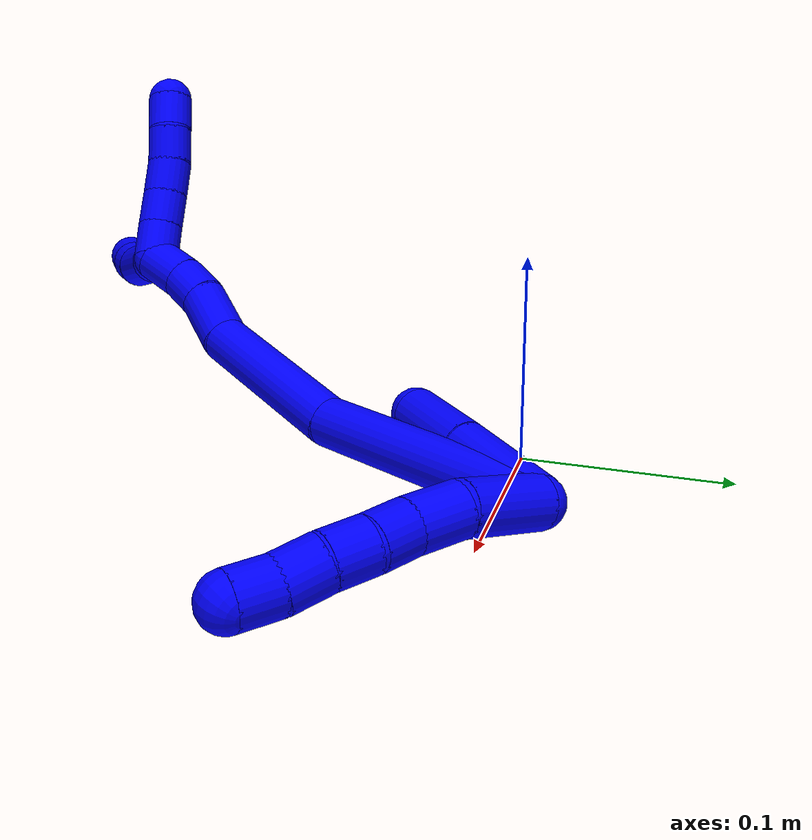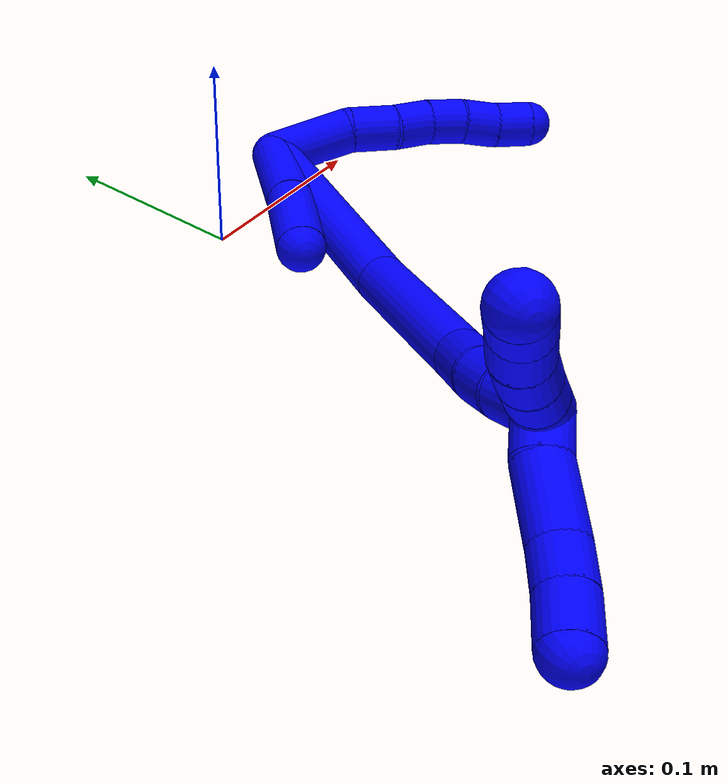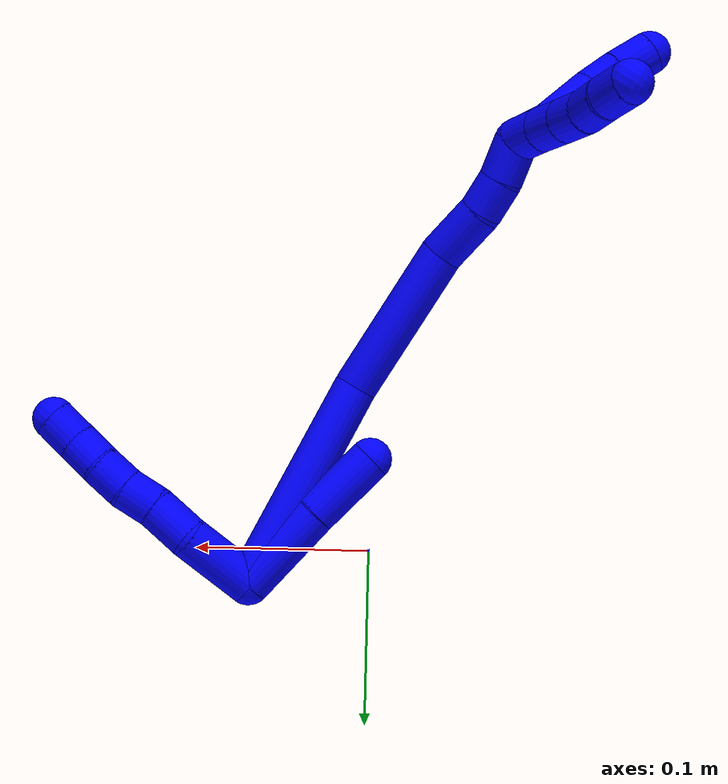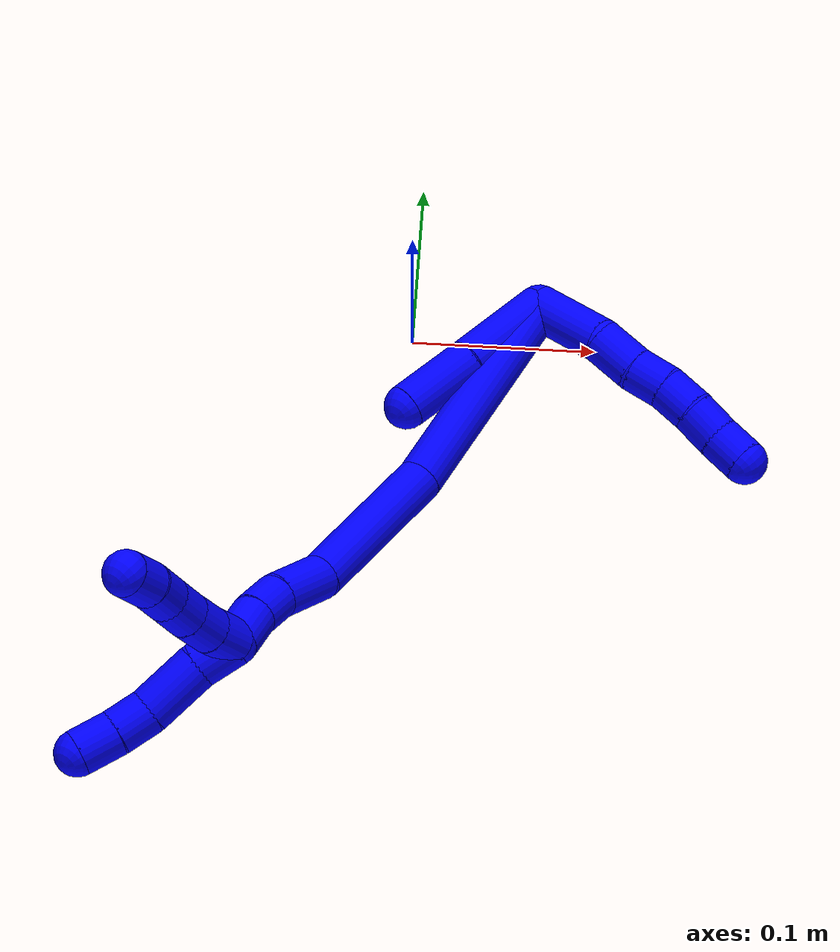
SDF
<sdf version="1.7">
 <world name="default">
  <model name="photoneo_s_sensor">
   <static>1</static>
   <pose>0 0 2 1.57079 1.57079 3.14159</pose>
   <link name="link">
    <inertial><mass>0.1</mass></inertial>
    <sensor name="sensor" type="depth">
     <update_rate>30</update_rate>
     <camera>
      <horizontal_fov>1.22</horizontal_fov>
      <image><width>1920</width><height>1200</height><format>B8G8R8</format></image>
      <clip><near>0.1</near><far>4</far></clip>
      <depth_camera><output>points</output></depth_camera>
     </camera>
     <plugin name="camera_plugin" filename="libgazebo_ros_depth_camera.so">
      <baseline>0.2</baseline>
      <alwaysOn>1</alwaysOn>
      <updateRate>0.0</updateRate>
      <cameraName>camera_ir</cameraName>
      <imageTopicName>/camera/color/image_raw</imageTopicName>
      <cameraInfoTopicName>/camera/color/camera_info</cameraInfoTopicName>
      <depthImageTopicName>/camera/depth/image_raw</depthImageTopicName>
      <depthImageCameraInfoTopicName>/camera/depth/camera_info</depthImageCameraInfoTopicName>
      <pointCloudTopicName>/camera/depth/points</pointCloudTopicName>
      <frameName>fr_optical</frameName>
      <pointCloudCutoff>0.1</pointCloudCutoff>
      <pointCloudCutoffMax>2.0</pointCloudCutoffMax>
      <distortionK1>0</distortionK1>
      <distortionK2>0</distortionK2>
      <distortionK3>0</distortionK3>
      <distortionT1>0</distortionT1>
      <distortionT2>0</distortionT2>
      <CxPrime>0</CxPrime>
      <Cx>0</Cx>
      <Cy>0</Cy>
      <focalLength>0</focalLength>
      <hackBaseline>0</hackBaseline>
     </plugin>
    </sensor>
   </link>
  </model>
  <model name="bin">
   <static>1</static>
   <link name="bottom">
    <collision name="collision-bottom">
     <pose>0 0 -0.01 0 -0 0</pose>
     <geometry><box><size>0.8 0.6 0.02</size></box></geometry>
     <surface>
      <friction><ode><mu>100</mu><mu2>100</mu2></ode></friction>
      <contact><collide_bitmask>65535</collide_bitmask></contact>
     </surface>
    </collision>
   </link>
   <link name="west_wall">
    <collision name="collision-west_wall">
     <pose>-0.41 0 0.1 0 -0 0</pose>
     <geometry><box><size>0.02 0.6 0.2</size></box></geometry>
     <surface>
      <friction><ode><mu>100</mu><mu2>100</mu2></ode></friction>
      <contact><collide_bitmask>65535</collide_bitmask></contact>
     </surface>
    </collision>
   </link>
   <link name="east_wall">
    <collision name="collision-east_wall">
     <pose>0.41 0 0.1 0 -0 0</pose>
     <geometry><box><size>0.02 0.6 0.2</size></box></geometry>
     <surface>
      <friction><ode><mu>100</mu><mu2>100</mu2></ode></friction>
      <contact><collide_bitmask>65535</collide_bitmask></contact>
     </surface>
    </collision>
   </link>
   <link name="south_wall">
    <collision name="collision-south_wall">
     <pose>0 -0.31 0.1 0 -0 0</pose>
     <geometry><box><size>0.8 0.02 0.2</size></box></geometry>
     <surface>
      <friction><ode><mu>100</mu><mu2>100</mu2></ode></friction>
      <contact><collide_bitmask>65535</collide_bitmask></contact>
     </surface>
    </collision>
   </link>
   <link name="north_wall">
    <collision name="collision-north_wall">
     <pose>0 0.31 0.1 0 -0 0</pose>
     <geometry><box><size>0.8 0.02 0.2</size></box></geometry>
     <surface>
      <friction><ode><mu>100</mu><mu2>100</mu2></ode></friction>
      <contact><collide_bitmask>65535</collide_bitmask></contact>
     </surface>
    </collision>
   </link>
  </model>
  <model name="1">
   <static>0</static>
   <link name="1">
    <collision name="collision-cylinder-e_1_2_8">
     <pose>0.020277 -0.008296 0.001987 1.33573 1.17259 0.965195</pose>
     <geometry><cylinder><radius>0.0125</radius><length>0.043996</length></cylinder></geometry>
     <surface>
      <friction><ode><mu>1.16</mu><mu2>1.16</mu2><slip1>0</slip1><slip2>0</slip2></ode></friction>
      <contact><ode><kp>1e+06</kp><kd>1</kd><max_vel>0</max_vel><min_depth>0.001</min_depth></ode></contact>
     </surface>
    </collision>
    <visual name="visual-cylinder-e_1_2_8">
     <pose>0.020277 -0.008296 0.001987 1.33573 1.17259 0.965195</pose>
     <geometry><cylinder><radius>0.0125</radius><length>0.043996</length></cylinder></geometry>
     <material><ambient>0 0 1 1</ambient></material>
    </visual>
    <collision name="collision-cylinder-e_2_8_9">
     <pose>0.050635 -0.024394 0.005424 1.38695 0.903838 0.767009</pose>
     <geometry><cylinder><radius>0.0125</radius><length>0.02566</length></cylinder></geometry>
     <surface>
      <friction><ode><mu>1.16</mu><mu2>1.16</mu2><slip1>0</slip1><slip2>0</slip2></ode></friction>
      <contact><ode><kp>1e+06</kp><kd>1</kd><max_vel>0</max_vel><min_depth>0.001</min_depth></ode></contact>
     </surface>
    </collision>
    <visual name="visual-cylinder-e_2_8_9">
     <pose>0.050635 -0.024394 0.005424 1.38695 0.903838 0.767009</pose>
     <geometry><cylinder><radius>0.0125</radius><length>0.02566</length></cylinder></geometry>
     <material><ambient>0 0 1 1</ambient></material>
    </visual>
    <collision name="collision-cylinder-e_3_9_10">
     <pose>0.068963 -0.037967 0.006415 1.65035 0.958826 1.02547</pose>
     <geometry><cylinder><radius>0.0125</radius><length>0.020154</length></cylinder></geometry>
     <surface>
      <friction><ode><mu>1.16</mu><mu2>1.16</mu2><slip1>0</slip1><slip2>0</slip2></ode></friction>
      <contact><ode><kp>1e+06</kp><kd>1</kd><max_vel>0</max_vel><min_depth>0.001</min_depth></ode></contact>
     </surface>
    </collision>
    <visual name="visual-cylinder-e_3_9_10">
     <pose>0.068963 -0.037967 0.006415 1.65035 0.958826 1.02547</pose>
     <geometry><cylinder><radius>0.0125</radius><length>0.020154</length></cylinder></geometry>
     <material><ambient>0 0 1 1</ambient></material>
    </visual>
    <collision name="collision-cylinder-e_4_10_11">
     <pose>0.084883 -0.050112 0.007076 1.39672 0.870003 0.743887</pose>
     <geometry><cylinder><radius>0.0125</radius><length>0.020075</length></cylinder></geometry>
     <surface>
      <friction><ode><mu>1.16</mu><mu2>1.16</mu2><slip1>0</slip1><slip2>0</slip2></ode></friction>
      <contact><ode><kp>1e+06</kp><kd>1</kd><max_vel>0</max_vel><min_depth>0.001</min_depth></ode></contact>
     </surface>
    </collision>
    <visual name="visual-cylinder-e_4_10_11">
     <pose>0.084883 -0.050112 0.007076 1.39672 0.870003 0.743887</pose>
     <geometry><cylinder><radius>0.0125</radius><length>0.020075</length></cylinder></geometry>
     <material><ambient>0 0 1 1</ambient></material>
    </visual>
    <collision name="collision-cylinder-e_5_11_12">
     <pose>0.099267 -0.063833 0.009389 1.40992 0.733861 0.632069</pose>
     <geometry><cylinder><radius>0.0125</radius><length>0.020045</length></cylinder></geometry>
     <surface>
      <friction><ode><mu>1.16</mu><mu2>1.16</mu2><slip1>0</slip1><slip2>0</slip2></ode></friction>
      <contact><ode><kp>1e+06</kp><kd>1</kd><max_vel>0</max_vel><min_depth>0.001</min_depth></ode></contact>
     </surface>
    </collision>
    <visual name="visual-cylinder-e_5_11_12">
     <pose>0.099267 -0.063833 0.009389 1.40992 0.733861 0.632069</pose>
     <geometry><cylinder><radius>0.0125</radius><length>0.020045</length></cylinder></geometry>
     <material><ambient>0 0 1 1</ambient></material>
    </visual>
    <collision name="collision-cylinder-e_6_12_6">
     <pose>0.113801 -0.077255 0.012202 1.31012 0.893636 0.705382</pose>
     <geometry><cylinder><radius>0.0125</radius><length>0.020071</length></cylinder></geometry>
     <surface>
      <friction><ode><mu>1.16</mu><mu2>1.16</mu2><slip1>0</slip1><slip2>0</slip2></ode></friction>
      <contact><ode><kp>1e+06</kp><kd>1</kd><max_vel>0</max_vel><min_depth>0.001</min_depth></ode></contact>
     </surface>
    </collision>
    <visual name="visual-cylinder-e_6_12_6">
     <pose>0.113801 -0.077255 0.012202 1.31012 0.893636 0.705382</pose>
     <geometry><cylinder><radius>0.0125</radius><length>0.020071</length></cylinder></geometry>
     <material><ambient>0 0 1 1</ambient></material>
    </visual>
    <collision name="collision-cylinder-e_1_2_13">
     <pose>-0.004992 0.000187 0.027195 -0.006864 -0.181547 0.000625</pose>
     <geometry><cylinder><radius>0.0125</radius><length>0.0553</length></cylinder></geometry>
     <surface>
      <friction><ode><mu>1.16</mu><mu2>1.16</mu2><slip1>0</slip1><slip2>0</slip2></ode></friction>
      <contact><ode><kp>1e+06</kp><kd>1</kd><max_vel>0</max_vel><min_depth>0.001</min_depth></ode></contact>
     </surface>
    </collision>
    <visual name="visual-cylinder-e_1_2_13">
     <pose>-0.004992 0.000187 0.027195 -0.006864 -0.181547 0.000625</pose>
     <geometry><cylinder><radius>0.0125</radius><length>0.0553</length></cylinder></geometry>
     <material><ambient>0 0 1 1</ambient></material>
    </visual>
    <collision name="collision-cylinder-e_2_13_5">
     <pose>-0.015458 -5.1e-05 0.076055 0.019561 -0.247419 -0.002432</pose>
     <geometry><cylinder><radius>0.0125</radius><length>0.0447</length></cylinder></geometry>
     <surface>
      <friction><ode><mu>1.16</mu><mu2>1.16</mu2><slip1>0</slip1><slip2>0</slip2></ode></friction>
      <contact><ode><kp>1e+06</kp><kd>1</kd><max_vel>0</max_vel><min_depth>0.001</min_depth></ode></contact>
     </surface>
    </collision>
    <visual name="visual-cylinder-e_2_13_5">
     <pose>-0.015458 -5.1e-05 0.076055 0.019561 -0.247419 -0.002432</pose>
     <geometry><cylinder><radius>0.0125</radius><length>0.0447</length></cylinder></geometry>
     <material><ambient>0 0 1 1</ambient></material>
    </visual>
    <collision name="collision-cylinder-e_1_2_14">
     <pose>-0.000609 -0.013612 0.063139 0.21234 -0.009426 -0.001004</pose>
     <geometry><cylinder><radius>0.0125</radius><length>0.129186</length></cylinder></geometry>
     <surface>
      <friction><ode><mu>1.16</mu><mu2>1.16</mu2><slip1>0</slip1><slip2>0</slip2></ode></friction>
      <contact><ode><kp>1e+06</kp><kd>1</kd><max_vel>0</max_vel><min_depth>0.001</min_depth></ode></contact>
     </surface>
    </collision>
    <visual name="visual-cylinder-e_1_2_14">
     <pose>-0.000609 -0.013612 0.063139 0.21234 -0.009426 -0.001004</pose>
     <geometry><cylinder><radius>0.0125</radius><length>0.129186</length></cylinder></geometry>
     <material><ambient>0 0 1 1</ambient></material>
    </visual>
    <collision name="collision-cylinder-e_2_14_15">
     <pose>0.000581 -0.026188 0.172151 -0.022598 0.039177 -0.000443</pose>
     <geometry><cylinder><radius>0.0125</radius><length>0.091838</length></cylinder></geometry>
     <surface>
      <friction><ode><mu>1.16</mu><mu2>1.16</mu2><slip1>0</slip1><slip2>0</slip2></ode></friction>
      <contact><ode><kp>1e+06</kp><kd>1</kd><max_vel>0</max_vel><min_depth>0.001</min_depth></ode></contact>
     </surface>
    </collision>
    <visual name="visual-cylinder-e_2_14_15">
     <pose>0.000581 -0.026188 0.172151 -0.022598 0.039177 -0.000443</pose>
     <geometry><cylinder><radius>0.0125</radius><length>0.091838</length></cylinder></geometry>
     <material><ambient>0 0 1 1</ambient></material>
    </visual>
    <collision name="collision-cylinder-e_3_15_16">
     <pose>0.002566 -0.019824 0.23405 -0.32088 0.011023 -0.001784</pose>
     <geometry><cylinder><radius>0.0125</radius><length>0.033781</length></cylinder></geometry>
     <surface>
      <friction><ode><mu>1.16</mu><mu2>1.16</mu2><slip1>0</slip1><slip2>0</slip2></ode></friction>
      <contact><ode><kp>1e+06</kp><kd>1</kd><max_vel>0</max_vel><min_depth>0.001</min_depth></ode></contact>
     </surface>
    </collision>
    <visual name="visual-cylinder-e_3_15_16">
     <pose>0.002566 -0.019824 0.23405 -0.32088 0.011023 -0.001784</pose>
     <geometry><cylinder><radius>0.0125</radius><length>0.033781</length></cylinder></geometry>
     <material><ambient>0 0 1 1</ambient></material>
    </visual>
    <collision name="collision-cylinder-e_4_16_17">
     <pose>0.004055 -0.012992 0.260588 -0.142266 0.12216 -0.008715</pose>
     <geometry><cylinder><radius>0.0125</radius><length>0.021395</length></cylinder></geometry>
     <surface>
      <friction><ode><mu>1.16</mu><mu2>1.16</mu2><slip1>0</slip1><slip2>0</slip2></ode></friction>
      <contact><ode><kp>1e+06</kp><kd>1</kd><max_vel>0</max_vel><min_depth>0.001</min_depth></ode></contact>
     </surface>
    </collision>
    <visual name="visual-cylinder-e_4_16_17">
     <pose>0.004055 -0.012992 0.260588 -0.142266 0.12216 -0.008715</pose>
     <geometry><cylinder><radius>0.0125</radius><length>0.021395</length></cylinder></geometry>
     <material><ambient>0 0 1 1</ambient></material>
    </visual>
    <collision name="collision-cylinder-e_5_17_1">
     <pose>0.008425 -0.011272 0.282595 -0.018584 0.2606 -0.002435</pose>
     <geometry><cylinder><radius>0.0125</radius><length>0.0238</length></cylinder></geometry>
     <surface>
      <friction><ode><mu>1.16</mu><mu2>1.16</mu2><slip1>0</slip1><slip2>0</slip2></ode></friction>
      <contact><ode><kp>1e+06</kp><kd>1</kd><max_vel>0</max_vel><min_depth>0.001</min_depth></ode></contact>
     </surface>
    </collision>
    <visual name="visual-cylinder-e_5_17_1">
     <pose>0.008425 -0.011272 0.282595 -0.018584 0.2606 -0.002435</pose>
     <geometry><cylinder><radius>0.0125</radius><length>0.0238</length></cylinder></geometry>
     <material><ambient>0 0 1 1</ambient></material>
    </visual>
    <collision name="collision-cylinder-e_1_1_18">
     <pose>0.004728 -0.012856 0.303017 0.19874 -0.638889 -0.065931</pose>
     <geometry><cylinder><radius>0.0125</radius><length>0.022683</length></cylinder></geometry>
     <surface>
      <friction><ode><mu>1.16</mu><mu2>1.16</mu2><slip1>0</slip1><slip2>0</slip2></ode></friction>
      <contact><ode><kp>1e+06</kp><kd>1</kd><max_vel>0</max_vel><min_depth>0.001</min_depth></ode></contact>
     </surface>
    </collision>
    <visual name="visual-cylinder-e_1_1_18">
     <pose>0.004728 -0.012856 0.303017 0.19874 -0.638889 -0.065931</pose>
     <geometry><cylinder><radius>0.0125</radius><length>0.022683</length></cylinder></geometry>
     <material><ambient>0 0 1 1</ambient></material>
    </visual>
    <collision name="collision-cylinder-e_2_18_19">
     <pose>-0.009757 -0.019323 0.326707 0.306258 -0.462558 -0.072659</pose>
     <geometry><cylinder><radius>0.0125</radius><length>0.034609</length></cylinder></geometry>
     <surface>
      <friction><ode><mu>1.16</mu><mu2>1.16</mu2><slip1>0</slip1><slip2>0</slip2></ode></friction>
      <contact><ode><kp>1e+06</kp><kd>1</kd><max_vel>0</max_vel><min_depth>0.001</min_depth></ode></contact>
     </surface>
    </collision>
    <visual name="visual-cylinder-e_2_18_19">
     <pose>-0.009757 -0.019323 0.326707 0.306258 -0.462558 -0.072659</pose>
     <geometry><cylinder><radius>0.0125</radius><length>0.034609</length></cylinder></geometry>
     <material><ambient>0 0 1 1</ambient></material>
    </visual>
    <collision name="collision-cylinder-e_3_19_20">
     <pose>-0.021889 -0.024622 0.350734 0.067939 -0.443586 -0.015326</pose>
     <geometry><cylinder><radius>0.0125</radius><length>0.020555</length></cylinder></geometry>
     <surface>
      <friction><ode><mu>1.16</mu><mu2>1.16</mu2><slip1>0</slip1><slip2>0</slip2></ode></friction>
      <contact><ode><kp>1e+06</kp><kd>1</kd><max_vel>0</max_vel><min_depth>0.001</min_depth></ode></contact>
     </surface>
    </collision>
    <visual name="visual-cylinder-e_3_19_20">
     <pose>-0.021889 -0.024622 0.350734 0.067939 -0.443586 -0.015326</pose>
     <geometry><cylinder><radius>0.0125</radius><length>0.020555</length></cylinder></geometry>
     <material><ambient>0 0 1 1</ambient></material>
    </visual>
    <collision name="collision-cylinder-e_4_20_4">
     <pose>-0.03151 -0.0251 0.369769 -0.015545 -0.489695 0.003884</pose>
     <geometry><cylinder><radius>0.0125</radius><length>0.022153</length></cylinder></geometry>
     <surface>
      <friction><ode><mu>1.16</mu><mu2>1.16</mu2><slip1>0</slip1><slip2>0</slip2></ode></friction>
      <contact><ode><kp>1e+06</kp><kd>1</kd><max_vel>0</max_vel><min_depth>0.001</min_depth></ode></contact>
     </surface>
    </collision>
    <visual name="visual-cylinder-e_4_20_4">
     <pose>-0.03151 -0.0251 0.369769 -0.015545 -0.489695 0.003884</pose>
     <geometry><cylinder><radius>0.0125</radius><length>0.022153</length></cylinder></geometry>
     <material><ambient>0 0 1 1</ambient></material>
    </visual>
    <collision name="collision-cylinder-e_1_1_21">
     <pose>0.011732 -0.002894 0.29986 -0.955684 0.024041 -0.012451</pose>
     <geometry><cylinder><radius>0.0125</radius><length>0.02</length></cylinder></geometry>
     <surface>
      <friction><ode><mu>1.16</mu><mu2>1.16</mu2><slip1>0</slip1><slip2>0</slip2></ode></friction>
      <contact><ode><kp>1e+06</kp><kd>1</kd><max_vel>0</max_vel><min_depth>0.001</min_depth></ode></contact>
     </surface>
    </collision>
    <visual name="visual-cylinder-e_1_1_21">
     <pose>0.011732 -0.002894 0.29986 -0.955684 0.024041 -0.012451</pose>
     <geometry><cylinder><radius>0.0125</radius><length>0.02</length></cylinder></geometry>
     <material><ambient>0 0 1 1</ambient></material>
    </visual>
    <collision name="collision-cylinder-e_2_21_22">
     <pose>0.01262 0.013869 0.310694 -1.03847 0.064814 -0.037053</pose>
     <geometry><cylinder><radius>0.0125</radius><length>0.02</length></cylinder></geometry>
     <surface>
      <friction><ode><mu>1.16</mu><mu2>1.16</mu2><slip1>0</slip1><slip2>0</slip2></ode></friction>
      <contact><ode><kp>1e+06</kp><kd>1</kd><max_vel>0</max_vel><min_depth>0.001</min_depth></ode></contact>
     </surface>
    </collision>
    <visual name="visual-cylinder-e_2_21_22">
     <pose>0.01262 0.013869 0.310694 -1.03847 0.064814 -0.037053</pose>
     <geometry><cylinder><radius>0.0125</radius><length>0.02</length></cylinder></geometry>
     <material><ambient>0 0 1 1</ambient></material>
    </visual>
    <collision name="collision-cylinder-e_3_22_23">
     <pose>0.014421 0.031206 0.32048 -1.07545 0.115585 -0.068978</pose>
     <geometry><cylinder><radius>0.0125</radius><length>0.02</length></cylinder></geometry>
     <surface>
      <friction><ode><mu>1.16</mu><mu2>1.16</mu2><slip1>0</slip1><slip2>0</slip2></ode></friction>
      <contact><ode><kp>1e+06</kp><kd>1</kd><max_vel>0</max_vel><min_depth>0.001</min_depth></ode></contact>
     </surface>
    </collision>
    <visual name="visual-cylinder-e_3_22_23">
     <pose>0.014421 0.031206 0.32048 -1.07545 0.115585 -0.068978</pose>
     <geometry><cylinder><radius>0.0125</radius><length>0.02</length></cylinder></geometry>
     <material><ambient>0 0 1 1</ambient></material>
    </visual>
    <collision name="collision-cylinder-e_4_23_24">
     <pose>0.018028 0.048239 0.330222 -1.02643 0.24795 -0.140232</pose>
     <geometry><cylinder><radius>0.0125</radius><length>0.02</length></cylinder></geometry>
     <surface>
      <friction><ode><mu>1.16</mu><mu2>1.16</mu2><slip1>0</slip1><slip2>0</slip2></ode></friction>
      <contact><ode><kp>1e+06</kp><kd>1</kd><max_vel>0</max_vel><min_depth>0.001</min_depth></ode></contact>
     </surface>
    </collision>
    <visual name="visual-cylinder-e_4_23_24">
     <pose>0.018028 0.048239 0.330222 -1.02643 0.24795 -0.140232</pose>
     <geometry><cylinder><radius>0.0125</radius><length>0.02</length></cylinder></geometry>
     <material><ambient>0 0 1 1</ambient></material>
    </visual>
    <collision name="collision-cylinder-e_5_24_3">
     <pose>0.021853 0.064445 0.341201 -0.92541 0.137525 -0.068682</pose>
     <geometry><cylinder><radius>0.0125</radius><length>0.02</length></cylinder></geometry>
     <surface>
      <friction><ode><mu>1.16</mu><mu2>1.16</mu2><slip1>0</slip1><slip2>0</slip2></ode></friction>
      <contact><ode><kp>1e+06</kp><kd>1</kd><max_vel>0</max_vel><min_depth>0.001</min_depth></ode></contact>
     </surface>
    </collision>
    <visual name="visual-cylinder-e_5_24_3">
     <pose>0.021853 0.064445 0.341201 -0.92541 0.137525 -0.068682</pose>
     <geometry><cylinder><radius>0.0125</radius><length>0.02</length></cylinder></geometry>
     <material><ambient>0 0 1 1</ambient></material>
    </visual>
    <collision name="collision-sphere-3">
     <pose>0.023224 0.072358 0.347159 0 -0 0</pose>
     <geometry><sphere><radius>0.0125</radius></sphere></geometry>
     <surface>
      <friction><ode><mu>1.16</mu><mu2>1.16</mu2><slip1>0</slip1><slip2>0</slip2></ode></friction>
      <contact><ode><kp>1e+06</kp><kd>1</kd><max_vel>0</max_vel><min_depth>0.001</min_depth></ode></contact>
     </surface>
    </collision>
    <visual name="visual-sphere-3">
     <pose>0.023224 0.072358 0.347159 0 -0 0</pose>
     <geometry><sphere><radius>0.0125</radius></sphere></geometry>
     <material><ambient>0 0 1 1</ambient></material>
    </visual>
    <collision name="collision-sphere-24">
     <pose>0.020482 0.056532 0.335242 0 -0 0</pose>
     <geometry><sphere><radius>0.0125</radius></sphere></geometry>
     <surface>
      <friction><ode><mu>1.16</mu><mu2>1.16</mu2><slip1>0</slip1><slip2>0</slip2></ode></friction>
      <contact><ode><kp>1e+06</kp><kd>1</kd><max_vel>0</max_vel><min_depth>0.001</min_depth></ode></contact>
     </surface>
    </collision>
    <visual name="visual-sphere-24">
     <pose>0.020482 0.056532 0.335242 0 -0 0</pose>
     <geometry><sphere><radius>0.0125</radius></sphere></geometry>
     <material><ambient>0 0 1 1</ambient></material>
    </visual>
    <collision name="collision-sphere-23">
     <pose>0.015574 0.039946 0.325202 0 -0 0</pose>
     <geometry><sphere><radius>0.0125</radius></sphere></geometry>
     <surface>
      <friction><ode><mu>1.16</mu><mu2>1.16</mu2><slip1>0</slip1><slip2>0</slip2></ode></friction>
      <contact><ode><kp>1e+06</kp><kd>1</kd><max_vel>0</max_vel><min_depth>0.001</min_depth></ode></contact>
     </surface>
    </collision>
    <visual name="visual-sphere-23">
     <pose>0.015574 0.039946 0.325202 0 -0 0</pose>
     <geometry><sphere><radius>0.0125</radius></sphere></geometry>
     <material><ambient>0 0 1 1</ambient></material>
    </visual>
    <collision name="collision-sphere-22">
     <pose>0.013267 0.022467 0.315758 0 -0 0</pose>
     <geometry><sphere><radius>0.0125</radius></sphere></geometry>
     <surface>
      <friction><ode><mu>1.16</mu><mu2>1.16</mu2><slip1>0</slip1><slip2>0</slip2></ode></friction>
      <contact><ode><kp>1e+06</kp><kd>1</kd><max_vel>0</max_vel><min_depth>0.001</min_depth></ode></contact>
     </surface>
    </collision>
    <visual name="visual-sphere-22">
     <pose>0.013267 0.022467 0.315758 0 -0 0</pose>
     <geometry><sphere><radius>0.0125</radius></sphere></geometry>
     <material><ambient>0 0 1 1</ambient></material>
    </visual>
    <collision name="collision-sphere-21">
     <pose>0.011972 0.005271 0.305629 0 -0 0</pose>
     <geometry><sphere><radius>0.0125</radius></sphere></geometry>
     <surface>
      <friction><ode><mu>1.16</mu><mu2>1.16</mu2><slip1>0</slip1><slip2>0</slip2></ode></friction>
      <contact><ode><kp>1e+06</kp><kd>1</kd><max_vel>0</max_vel><min_depth>0.001</min_depth></ode></contact>
     </surface>
    </collision>
    <visual name="visual-sphere-21">
     <pose>0.011972 0.005271 0.305629 0 -0 0</pose>
     <geometry><sphere><radius>0.0125</radius></sphere></geometry>
     <material><ambient>0 0 1 1</ambient></material>
    </visual>
    <collision name="collision-sphere-4">
     <pose>-0.03672 -0.024948 0.379543 0 -0 0</pose>
     <geometry><sphere><radius>0.0125</radius></sphere></geometry>
     <surface>
      <friction><ode><mu>1.16</mu><mu2>1.16</mu2><slip1>0</slip1><slip2>0</slip2></ode></friction>
      <contact><ode><kp>1e+06</kp><kd>1</kd><max_vel>0</max_vel><min_depth>0.001</min_depth></ode></contact>
     </surface>
    </collision>
    <visual name="visual-sphere-4">
     <pose>-0.03672 -0.024948 0.379543 0 -0 0</pose>
     <geometry><sphere><radius>0.0125</radius></sphere></geometry>
     <material><ambient>0 0 1 1</ambient></material>
    </visual>
    <collision name="collision-sphere-20">
     <pose>-0.0263 -0.025252 0.359995 0 -0 0</pose>
     <geometry><sphere><radius>0.0125</radius></sphere></geometry>
     <surface>
      <friction><ode><mu>1.16</mu><mu2>1.16</mu2><slip1>0</slip1><slip2>0</slip2></ode></friction>
      <contact><ode><kp>1e+06</kp><kd>1</kd><max_vel>0</max_vel><min_depth>0.001</min_depth></ode></contact>
     </surface>
    </collision>
    <visual name="visual-sphere-20">
     <pose>-0.0263 -0.025252 0.359995 0 -0 0</pose>
     <geometry><sphere><radius>0.0125</radius></sphere></geometry>
     <material><ambient>0 0 1 1</ambient></material>
    </visual>
    <collision name="collision-sphere-12">
     <pose>0.10598 -0.07118 0.010581 0 -0 0</pose>
     <geometry><sphere><radius>0.0125</radius></sphere></geometry>
     <surface>
      <friction><ode><mu>1.16</mu><mu2>1.16</mu2><slip1>0</slip1><slip2>0</slip2></ode></friction>
      <contact><ode><kp>1e+06</kp><kd>1</kd><max_vel>0</max_vel><min_depth>0.001</min_depth></ode></contact>
     </surface>
    </collision>
    <visual name="visual-sphere-12">
     <pose>0.10598 -0.07118 0.010581 0 -0 0</pose>
     <geometry><sphere><radius>0.0125</radius></sphere></geometry>
     <material><ambient>0 0 1 1</ambient></material>
    </visual>
    <collision name="collision-sphere-11">
     <pose>0.092555 -0.056487 0.008197 0 -0 0</pose>
     <geometry><sphere><radius>0.0125</radius></sphere></geometry>
     <surface>
      <friction><ode><mu>1.16</mu><mu2>1.16</mu2><slip1>0</slip1><slip2>0</slip2></ode></friction>
      <contact><ode><kp>1e+06</kp><kd>1</kd><max_vel>0</max_vel><min_depth>0.001</min_depth></ode></contact>
     </surface>
    </collision>
    <visual name="visual-sphere-11">
     <pose>0.092555 -0.056487 0.008197 0 -0 0</pose>
     <geometry><sphere><radius>0.0125</radius></sphere></geometry>
     <material><ambient>0 0 1 1</ambient></material>
    </visual>
    <collision name="collision-sphere-10">
     <pose>0.077211 -0.043738 0.005955 0 -0 0</pose>
     <geometry><sphere><radius>0.0125</radius></sphere></geometry>
     <surface>
      <friction><ode><mu>1.16</mu><mu2>1.16</mu2><slip1>0</slip1><slip2>0</slip2></ode></friction>
      <contact><ode><kp>1e+06</kp><kd>1</kd><max_vel>0</max_vel><min_depth>0.001</min_depth></ode></contact>
     </surface>
    </collision>
    <visual name="visual-sphere-10">
     <pose>0.077211 -0.043738 0.005955 0 -0 0</pose>
     <geometry><sphere><radius>0.0125</radius></sphere></geometry>
     <material><ambient>0 0 1 1</ambient></material>
    </visual>
    <collision name="collision-sphere-9">
     <pose>0.060715 -0.032197 0.006875 0 -0 0</pose>
     <geometry><sphere><radius>0.0125</radius></sphere></geometry>
     <surface>
      <friction><ode><mu>1.16</mu><mu2>1.16</mu2><slip1>0</slip1><slip2>0</slip2></ode></friction>
      <contact><ode><kp>1e+06</kp><kd>1</kd><max_vel>0</max_vel><min_depth>0.001</min_depth></ode></contact>
     </surface>
    </collision>
    <visual name="visual-sphere-9">
     <pose>0.060715 -0.032197 0.006875 0 -0 0</pose>
     <geometry><sphere><radius>0.0125</radius></sphere></geometry>
     <material><ambient>0 0 1 1</ambient></material>
    </visual>
    <collision name="collision-sphere-2">
     <geometry><sphere><radius>0.0125</radius></sphere></geometry>
     <surface>
      <friction><ode><mu>1.16</mu><mu2>1.16</mu2><slip1>0</slip1><slip2>0</slip2></ode></friction>
      <contact><ode><kp>1e+06</kp><kd>1</kd><max_vel>0</max_vel><min_depth>0.001</min_depth></ode></contact>
     </surface>
    </collision>
    <visual name="visual-sphere-2">
     <geometry><sphere><radius>0.0125</radius></sphere></geometry>
     <material><ambient>0 0 1 1</ambient></material>
    </visual>
    <collision name="collision-sphere-19">
     <pose>-0.017479 -0.023992 0.341473 0 -0 0</pose>
     <geometry><sphere><radius>0.0125</radius></sphere></geometry>
     <surface>
      <friction><ode><mu>1.16</mu><mu2>1.16</mu2><slip1>0</slip1><slip2>0</slip2></ode></friction>
      <contact><ode><kp>1e+06</kp><kd>1</kd><max_vel>0</max_vel><min_depth>0.001</min_depth></ode></contact>
     </surface>
    </collision>
    <visual name="visual-sphere-19">
     <pose>-0.017479 -0.023992 0.341473 0 -0 0</pose>
     <geometry><sphere><radius>0.0125</radius></sphere></geometry>
     <material><ambient>0 0 1 1</ambient></material>
    </visual>
    <collision name="collision-sphere-8">
     <pose>0.040554 -0.016591 0.003973 0 -0 0</pose>
     <geometry><sphere><radius>0.0125</radius></sphere></geometry>
     <surface>
      <friction><ode><mu>1.16</mu><mu2>1.16</mu2><slip1>0</slip1><slip2>0</slip2></ode></friction>
      <contact><ode><kp>1e+06</kp><kd>1</kd><max_vel>0</max_vel><min_depth>0.001</min_depth></ode></contact>
     </surface>
    </collision>
    <visual name="visual-sphere-8">
     <pose>0.040554 -0.016591 0.003973 0 -0 0</pose>
     <geometry><sphere><radius>0.0125</radius></sphere></geometry>
     <material><ambient>0 0 1 1</ambient></material>
    </visual>
    <collision name="collision-sphere-6">
     <pose>0.121622 -0.083331 0.013823 0 -0 0</pose>
     <geometry><sphere><radius>0.0125</radius></sphere></geometry>
     <surface>
      <friction><ode><mu>1.16</mu><mu2>1.16</mu2><slip1>0</slip1><slip2>0</slip2></ode></friction>
      <contact><ode><kp>1e+06</kp><kd>1</kd><max_vel>0</max_vel><min_depth>0.001</min_depth></ode></contact>
     </surface>
    </collision>
    <visual name="visual-sphere-6">
     <pose>0.121622 -0.083331 0.013823 0 -0 0</pose>
     <geometry><sphere><radius>0.0125</radius></sphere></geometry>
     <material><ambient>0 0 1 1</ambient></material>
    </visual>
    <collision name="collision-sphere-13">
     <pose>-0.009985 0.000373 0.05439 0 -0 0</pose>
     <geometry><sphere><radius>0.0125</radius></sphere></geometry>
     <surface>
      <friction><ode><mu>1.16</mu><mu2>1.16</mu2><slip1>0</slip1><slip2>0</slip2></ode></friction>
      <contact><ode><kp>1e+06</kp><kd>1</kd><max_vel>0</max_vel><min_depth>0.001</min_depth></ode></contact>
     </surface>
    </collision>
    <visual name="visual-sphere-13">
     <pose>-0.009985 0.000373 0.05439 0 -0 0</pose>
     <geometry><sphere><radius>0.0125</radius></sphere></geometry>
     <material><ambient>0 0 1 1</ambient></material>
    </visual>
    <collision name="collision-sphere-5">
     <pose>-0.020932 -0.000474 0.09772 0 -0 0</pose>
     <geometry><sphere><radius>0.0125</radius></sphere></geometry>
     <surface>
      <friction><ode><mu>1.16</mu><mu2>1.16</mu2><slip1>0</slip1><slip2>0</slip2></ode></friction>
      <contact><ode><kp>1e+06</kp><kd>1</kd><max_vel>0</max_vel><min_depth>0.001</min_depth></ode></contact>
     </surface>
    </collision>
    <visual name="visual-sphere-5">
     <pose>-0.020932 -0.000474 0.09772 0 -0 0</pose>
     <geometry><sphere><radius>0.0125</radius></sphere></geometry>
     <material><ambient>0 0 1 1</ambient></material>
    </visual>
    <collision name="collision-sphere-14">
     <pose>-0.001218 -0.027224 0.126279 0 -0 0</pose>
     <geometry><sphere><radius>0.0125</radius></sphere></geometry>
     <surface>
      <friction><ode><mu>1.16</mu><mu2>1.16</mu2><slip1>0</slip1><slip2>0</slip2></ode></friction>
      <contact><ode><kp>1e+06</kp><kd>1</kd><max_vel>0</max_vel><min_depth>0.001</min_depth></ode></contact>
     </surface>
    </collision>
    <visual name="visual-sphere-14">
     <pose>-0.001218 -0.027224 0.126279 0 -0 0</pose>
     <geometry><sphere><radius>0.0125</radius></sphere></geometry>
     <material><ambient>0 0 1 1</ambient></material>
    </visual>
    <collision name="collision-sphere-15">
     <pose>0.002379 -0.025151 0.218023 0 -0 0</pose>
     <geometry><sphere><radius>0.0125</radius></sphere></geometry>
     <surface>
      <friction><ode><mu>1.16</mu><mu2>1.16</mu2><slip1>0</slip1><slip2>0</slip2></ode></friction>
      <contact><ode><kp>1e+06</kp><kd>1</kd><max_vel>0</max_vel><min_depth>0.001</min_depth></ode></contact>
     </surface>
    </collision>
    <visual name="visual-sphere-15">
     <pose>0.002379 -0.025151 0.218023 0 -0 0</pose>
     <geometry><sphere><radius>0.0125</radius></sphere></geometry>
     <material><ambient>0 0 1 1</ambient></material>
    </visual>
    <collision name="collision-sphere-16">
     <pose>0.002752 -0.014497 0.250077 0 -0 0</pose>
     <geometry><sphere><radius>0.0125</radius></sphere></geometry>
     <surface>
      <friction><ode><mu>1.16</mu><mu2>1.16</mu2><slip1>0</slip1><slip2>0</slip2></ode></friction>
      <contact><ode><kp>1e+06</kp><kd>1</kd><max_vel>0</max_vel><min_depth>0.001</min_depth></ode></contact>
     </surface>
    </collision>
    <visual name="visual-sphere-16">
     <pose>0.002752 -0.014497 0.250077 0 -0 0</pose>
     <geometry><sphere><radius>0.0125</radius></sphere></geometry>
     <material><ambient>0 0 1 1</ambient></material>
    </visual>
    <collision name="collision-sphere-17">
     <pose>0.005359 -0.011486 0.271098 0 -0 0</pose>
     <geometry><sphere><radius>0.0125</radius></sphere></geometry>
     <surface>
      <friction><ode><mu>1.16</mu><mu2>1.16</mu2><slip1>0</slip1><slip2>0</slip2></ode></friction>
      <contact><ode><kp>1e+06</kp><kd>1</kd><max_vel>0</max_vel><min_depth>0.001</min_depth></ode></contact>
     </surface>
    </collision>
    <visual name="visual-sphere-17">
     <pose>0.005359 -0.011486 0.271098 0 -0 0</pose>
     <geometry><sphere><radius>0.0125</radius></sphere></geometry>
     <material><ambient>0 0 1 1</ambient></material>
    </visual>
    <collision name="collision-sphere-1">
     <pose>0.011491 -0.011059 0.294091 0 -0 0</pose>
     <geometry><sphere><radius>0.0125</radius></sphere></geometry>
     <surface>
      <friction><ode><mu>1.16</mu><mu2>1.16</mu2><slip1>0</slip1><slip2>0</slip2></ode></friction>
      <contact><ode><kp>1e+06</kp><kd>1</kd><max_vel>0</max_vel><min_depth>0.001</min_depth></ode></contact>
     </surface>
    </collision>
    <visual name="visual-sphere-1">
     <pose>0.011491 -0.011059 0.294091 0 -0 0</pose>
     <geometry><sphere><radius>0.0125</radius></sphere></geometry>
     <material><ambient>0 0 1 1</ambient></material>
    </visual>
    <collision name="collision-sphere-18">
     <pose>-0.002035 -0.014654 0.311942 0 -0 0</pose>
     <geometry><sphere><radius>0.0125</radius></sphere></geometry>
     <surface>
      <friction><ode><mu>1.16</mu><mu2>1.16</mu2><slip1>0</slip1><slip2>0</slip2></ode></friction>
      <contact><ode><kp>1e+06</kp><kd>1</kd><max_vel>0</max_vel><min_depth>0.001</min_depth></ode></contact>
     </surface>
    </collision>
    <visual name="visual-sphere-18">
     <pose>-0.002035 -0.014654 0.311942 0 -0 0</pose>
     <geometry><sphere><radius>0.0125</radius></sphere></geometry>
     <material><ambient>0 0 1 1</ambient></material>
    </visual>
    <inertial>
     <pose>0.012181 -0.013185 0.154186 0 -0 0</pose>
     <mass>0.75</mass>
     <inertia>
      <ixx>0.000319</ixx>
      <ixy>0</ixy>
      <ixz>0</ixz>
      <iyy>0.000312</iyy>
      <iyz>0</iyz>
      <izz>7.5e-05</izz>
     </inertia>
    </inertial>
   </link>
   <pose>0.068292 0.020136 0.011259 1.34965 -0.573006 -0.460744</pose>
  </model>
 </world>
</sdf>
